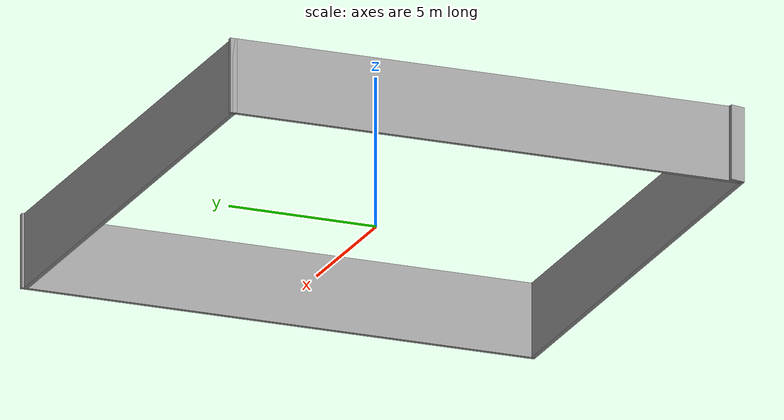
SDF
<?xml version='1.0'?>
<sdf version='1.7'>
  <model name='room'>
    <pose>-57107.8 19494.3 0 0 -0 0</pose>
    <link name='Wall_0'>
      <collision name='Wall_0_Collision'>
        <geometry>
          <box>
            <size>560.75 0.15 2.5</size>
          </box>
        </geometry>
        <pose>0 0 1.25 0 -0 0</pose>
      </collision>
      <visual name='Wall_0_Visual'>
        <pose>0 0 1.25 0 -0 0</pose>
        <geometry>
          <box>
            <size>560.75 0.15 2.5</size>
          </box>
        </geometry>
        <material>
          <script>
            <uri>file://media/materials/scripts/gazebo.material</uri>
            <name>Gazebo/Grey</name>
          </script>
          <ambient>1 1 1 1</ambient>
        </material>
        <meta>
          <layer>0</layer>
        </meta>
      </visual>
      <pose>-56846.5 19774.9 0 0 -0 2.87979</pose>
    </link>
    <link name='Wall_1'>
      <collision name='Wall_1_Collision'>
        <geometry>
          <box>
            <size>952.5 0.15 2.5</size>
          </box>
        </geometry>
        <pose>0 0 1.25 0 -0 0</pose>
      </collision>
      <visual name='Wall_1_Visual'>
        <pose>0 0 1.25 0 -0 0</pose>
        <geometry>
          <box>
            <size>952.5 0.15 2.5</size>
          </box>
        </geometry>
        <material>
          <script>
            <uri>file://media/materials/scripts/gazebo.material</uri>
            <name>Gazebo/Grey</name>
          </script>
          <ambient>1 1 1 1</ambient>
        </material>
        <meta>
          <layer>0</layer>
        </meta>
      </visual>
      <pose>-56657.3 19724.2 0 0 -0 -0.261799</pose>
    </link>
    <link name='Wall_10'>
      <collision name='Wall_10_Collision'>
        <geometry>
          <box>
            <size>0.16 0.15 2.5</size>
          </box>
        </geometry>
        <pose>0 0 1.25 0 -0 0</pose>
      </collision>
      <visual name='Wall_10_Visual'>
        <pose>0 0 1.25 0 -0 0</pose>
        <geometry>
          <box>
            <size>0.16 0.15 2.5</size>
          </box>
        </geometry>
        <material>
          <script>
            <uri>file://media/materials/scripts/gazebo.material</uri>
            <name>Gazebo/Grey</name>
          </script>
          <ambient>0 0 0 1</ambient>
        </material>
        <meta>
          <layer>0</layer>
        </meta>
      </visual>
      <pose>57099.7 -19503.5 0 0 -0 0</pose>
    </link>
    <link name='Wall_11'>
      <collision name='Wall_11_Collision'>
        <geometry>
          <box>
            <size>17.5 0.15 2.5</size>
          </box>
        </geometry>
        <pose>0 0 1.25 0 -0 0</pose>
      </collision>
      <visual name='Wall_11_Visual'>
        <pose>0 0 1.25 0 -0 0</pose>
        <geometry>
          <box>
            <size>17.5 0.15 2.5</size>
          </box>
        </geometry>
        <material>
          <script>
            <uri>file://media/materials/scripts/gazebo.material</uri>
            <name>Gazebo/Grey</name>
          </script>
          <ambient>1 1 1 1</ambient>
        </material>
        <meta>
          <layer>0</layer>
        </meta>
      </visual>
      <pose>57099.7 -19494.8 0 0 -0 1.5708</pose>
    </link>
    <link name='Wall_12'>
      <collision name='Wall_12_Collision'>
        <geometry>
          <box>
            <size>17.75 0.15 2.5</size>
          </box>
        </geometry>
        <pose>0 0 1.25 0 -0 0</pose>
      </collision>
      <visual name='Wall_12_Visual'>
        <pose>0 0 1.25 0 -0 0</pose>
        <geometry>
          <box>
            <size>17.75 0.15 2.5</size>
          </box>
        </geometry>
        <material>
          <script>
            <uri>file://media/materials/scripts/gazebo.material</uri>
            <name>Gazebo/Grey</name>
          </script>
          <ambient>1 1 1 1</ambient>
        </material>
        <meta>
          <layer>0</layer>
        </meta>
      </visual>
      <pose>57108.5 -19486.2 0 0 -0 0</pose>
    </link>
    <link name='Wall_13'>
      <collision name='Wall_13_Collision'>
        <geometry>
          <box>
            <size>17.5 0.15 2.5</size>
          </box>
        </geometry>
        <pose>0 0 1.25 0 -0 0</pose>
      </collision>
      <visual name='Wall_13_Visual'>
        <pose>0 0 1.25 0 -0 0</pose>
        <geometry>
          <box>
            <size>17.5 0.15 2.5</size>
          </box>
        </geometry>
        <material>
          <script>
            <uri>file://media/materials/scripts/gazebo.material</uri>
            <name>Gazebo/Grey</name>
          </script>
          <ambient>1 1 1 1</ambient>
        </material>
        <meta>
          <layer>0</layer>
        </meta>
      </visual>
      <pose>57117.3 -19494.8 0 0 -0 -1.5708</pose>
    </link>
    <link name='Wall_14'>
      <collision name='Wall_14_Collision'>
        <geometry>
          <box>
            <size>17.75 0.15 2.5</size>
          </box>
        </geometry>
        <pose>0 0 1.25 0 -0 0</pose>
      </collision>
      <visual name='Wall_14_Visual'>
        <pose>0 0 1.25 0 -0 0</pose>
        <geometry>
          <box>
            <size>17.75 0.15 2.5</size>
          </box>
        </geometry>
        <material>
          <script>
            <uri>file://media/materials/scripts/gazebo.material</uri>
            <name>Gazebo/Grey</name>
          </script>
          <ambient>1 1 1 1</ambient>
        </material>
        <meta>
          <layer>0</layer>
        </meta>
      </visual>
      <pose>57108.5 -19503.5 0 0 -0 3.14159</pose>
    </link>
    <link name='Wall_15'>
      <collision name='Wall_15_Collision'>
        <geometry>
          <box>
            <size>0.5 0.15 2.5</size>
          </box>
        </geometry>
        <pose>0 0 1.25 0 -0 0</pose>
      </collision>
      <visual name='Wall_15_Visual'>
        <pose>0 0 1.25 0 -0 0</pose>
        <geometry>
          <box>
            <size>0.5 0.15 2.5</size>
          </box>
        </geometry>
        <material>
          <script>
            <uri>file://media/materials/scripts/gazebo.material</uri>
            <name>Gazebo/Grey</name>
          </script>
          <ambient>1 1 1 1</ambient>
        </material>
        <meta>
          <layer>0</layer>
        </meta>
      </visual>
      <pose>57099.6 -19503.3 0 0 -0 1.8326</pose>
    </link>
    <link name='Wall_3'>
      <collision name='Wall_3_Collision'>
        <geometry>
          <box>
            <size>33315.2 0.15 2.5</size>
          </box>
        </geometry>
        <pose>0 0 1.25 0 -0 0</pose>
      </collision>
      <visual name='Wall_3_Visual'>
        <pose>0 0 1.25 0 -0 0</pose>
        <geometry>
          <box>
            <size>33315.2 0.15 2.5</size>
          </box>
        </geometry>
        <material>
          <script>
            <uri>file://media/materials/scripts/gazebo.material</uri>
            <name>Gazebo/Grey</name>
          </script>
          <ambient>1 1 1 1</ambient>
        </material>
        <meta>
          <layer>0</layer>
        </meta>
      </visual>
      <pose>-35233 9777.37 0 0 -0 -0.523599</pose>
    </link>
    <link name='Wall_4'>
      <collision name='Wall_4_Collision'>
        <geometry>
          <box>
            <size>34790.2 0.15 2.5</size>
          </box>
        </geometry>
        <pose>0 0 1.25 0 -0 0</pose>
      </collision>
      <visual name='Wall_4_Visual'>
        <pose>0 0 1.25 0 -0 0</pose>
        <geometry>
          <box>
            <size>34790.2 0.15 2.5</size>
          </box>
        </geometry>
        <material>
          <script>
            <uri>file://media/materials/scripts/gazebo.material</uri>
            <name>Gazebo/Grey</name>
          </script>
          <ambient>1 1 1 1</ambient>
        </material>
        <meta>
          <layer>0</layer>
        </meta>
      </visual>
      <pose>-3412.07 1448.59 0 0 -0 0</pose>
    </link>
    <link name='Wall_6'>
      <collision name='Wall_6_Collision'>
        <geometry>
          <box>
            <size>6776.75 0.15 2.5</size>
          </box>
        </geometry>
        <pose>0 0 1.25 0 -0 0</pose>
      </collision>
      <visual name='Wall_6_Visual'>
        <pose>0 0 1.25 0 -0 0</pose>
        <geometry>
          <box>
            <size>6776.75 0.15 2.5</size>
          </box>
        </geometry>
        <material>
          <script>
            <uri>file://media/materials/scripts/gazebo.material</uri>
            <name>Gazebo/Grey</name>
          </script>
          <ambient>1 1 1 1</ambient>
        </material>
        <meta>
          <layer>0</layer>
        </meta>
      </visual>
      <pose>-972.726 -2557.54 0 0 -0 -0.785398</pose>
    </link>
    <link name='Wall_7'>
      <collision name='Wall_7_Collision'>
        <geometry>
          <box>
            <size>57546.2 0.15 2.5</size>
          </box>
        </geometry>
        <pose>0 0 1.25 0 -0 0</pose>
      </collision>
      <visual name='Wall_7_Visual'>
        <pose>0 0 1.25 0 -0 0</pose>
        <geometry>
          <box>
            <size>57546.2 0.15 2.5</size>
          </box>
        </geometry>
        <material>
          <script>
            <uri>file://media/materials/scripts/gazebo.material</uri>
            <name>Gazebo/Grey</name>
          </script>
          <ambient>1 1 1 1</ambient>
        </material>
        <meta>
          <layer>0</layer>
        </meta>
      </visual>
      <pose>29215.8 -12400.4 0 0 -0 -0.261799</pose>
    </link>
    <static>1</static>
  </model>
</sdf>
